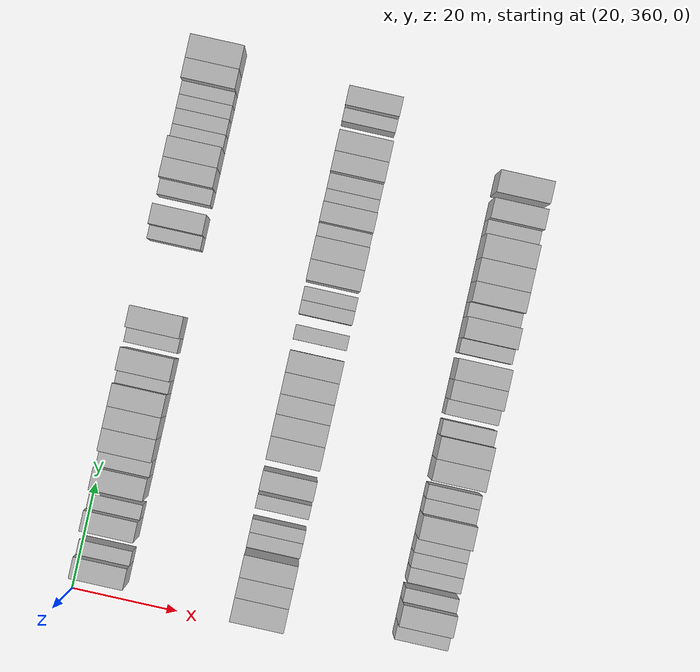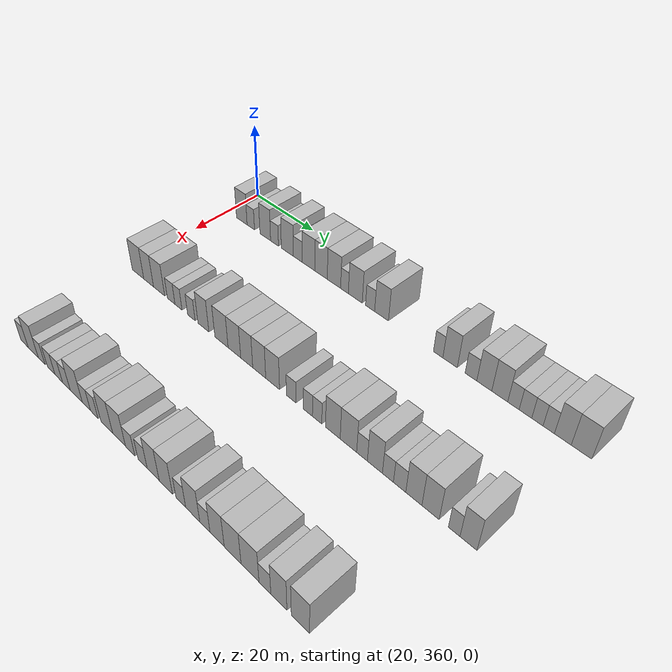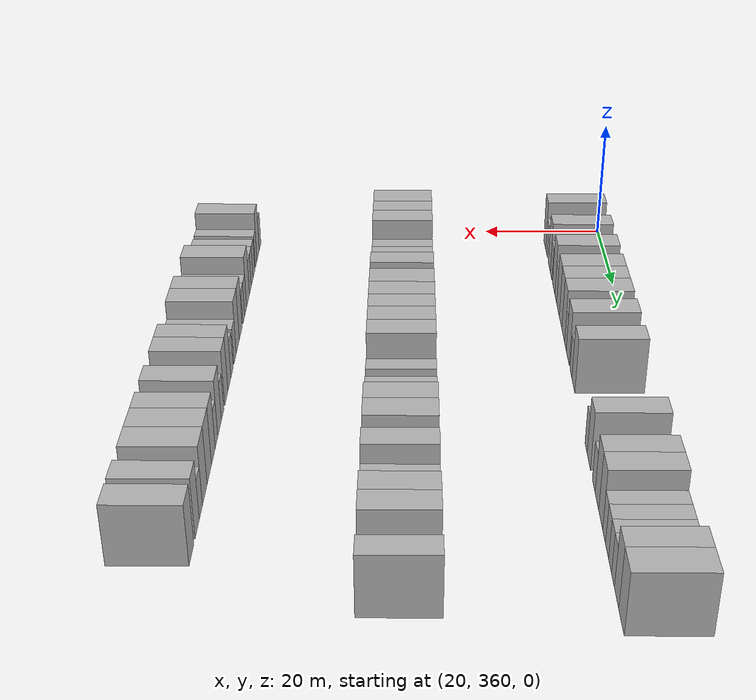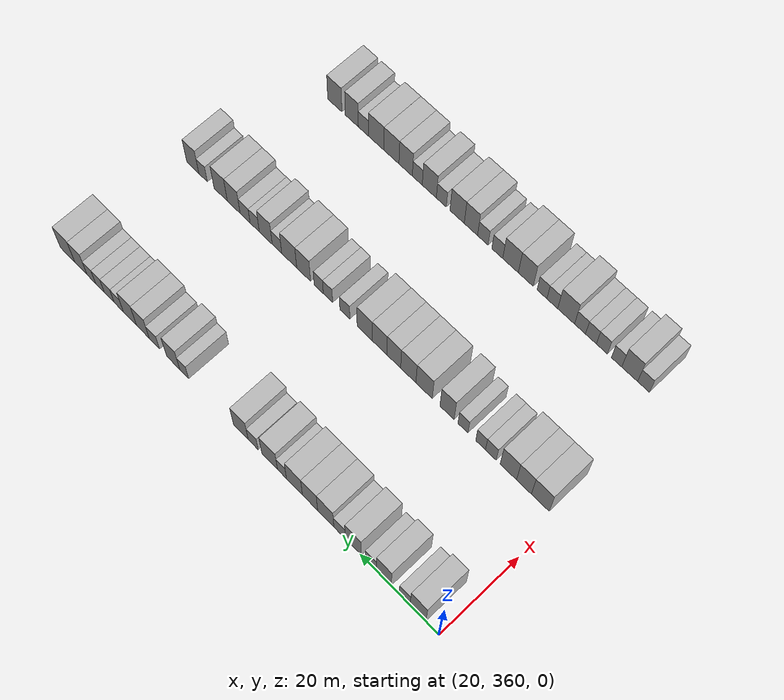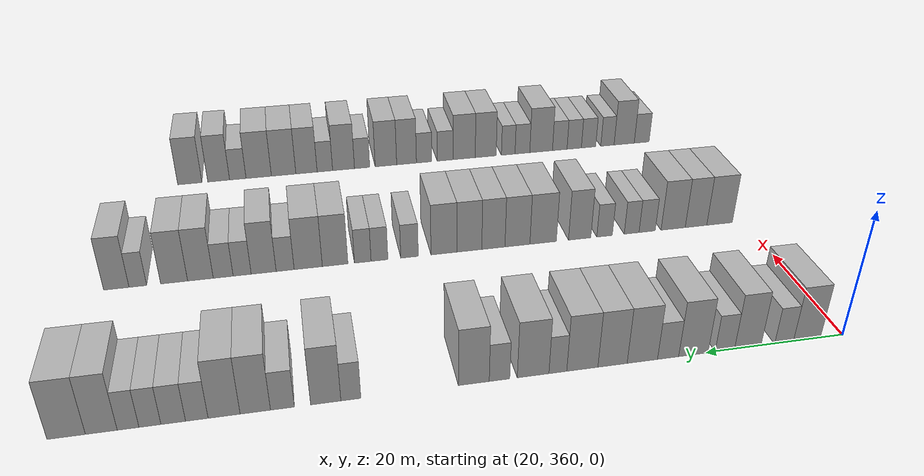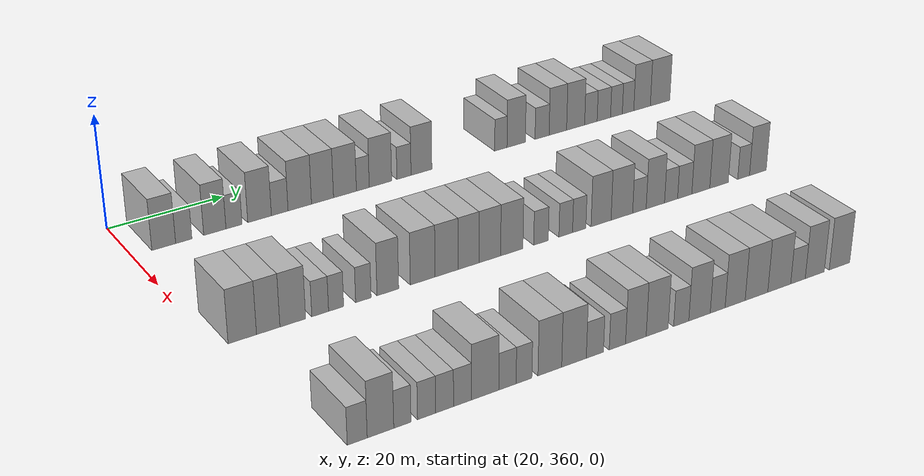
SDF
<sdf version="1.6">
 <world name="default">
  <model name="building_202">
   <static>1</static>
   <pose>25.0000 365.3246 0 0.000000 0.000000 0.000000</pose>
   <link name="link">
    <pose>0 0 4.50 0 0 0</pose>
    <collision name="collision"><geometry><box><size>10.0000 3.9905 9.0000</size></box></geometry></collision>
    <visual name="visual">
     <cast_shadows>0</cast_shadows>
     <geometry><box><size>10.0000 3.9905 9.0000</size></box></geometry>
     <material>
      <script>
       <uri>model://HANNAS_wall/materials/scripts</uri>
       <uri>model://HANNAS_wall/materials/textures</uri>
       <name>vrc/HANNAS_wall</name>
      </script>
     </material>
    </visual>
   </link>
  </model>
  <model name="building_203">
   <static>1</static>
   <pose>25.0000 368.6976 0 0.000000 0.000000 0.000000</pose>
   <link name="link">
    <pose>0 0 3.00 0 0 0</pose>
    <collision name="collision"><geometry><box><size>10.0000 2.7555 6.0000</size></box></geometry></collision>
    <visual name="visual">
     <cast_shadows>0</cast_shadows>
     <geometry><box><size>10.0000 2.7555 6.0000</size></box></geometry>
     <material>
      <script>
       <uri>model://HANNAS_wall/materials/scripts</uri>
       <uri>model://HANNAS_wall/materials/textures</uri>
       <name>vrc/HANNAS_wall</name>
      </script>
     </material>
    </visual>
   </link>
  </model>
  <model name="building_204">
   <static>1</static>
   <pose>25.0000 373.9931 0 0.000000 0.000000 0.000000</pose>
   <link name="link">
    <pose>0 0 4.50 0 0 0</pose>
    <collision name="collision"><geometry><box><size>10.0000 3.8355 9.0000</size></box></geometry></collision>
    <visual name="visual">
     <cast_shadows>0</cast_shadows>
     <geometry><box><size>10.0000 3.8355 9.0000</size></box></geometry>
     <material>
      <script>
       <uri>model://HANNAS_wall/materials/scripts</uri>
       <uri>model://HANNAS_wall/materials/textures</uri>
       <name>vrc/HANNAS_wall</name>
      </script>
     </material>
    </visual>
   </link>
  </model>
  <model name="building_205">
   <static>1</static>
   <pose>25.0000 377.3079 0 0.000000 0.000000 0.000000</pose>
   <link name="link">
    <pose>0 0 3.00 0 0 0</pose>
    <collision name="collision"><geometry><box><size>10.0000 2.7941 6.0000</size></box></geometry></collision>
    <visual name="visual">
     <cast_shadows>0</cast_shadows>
     <geometry><box><size>10.0000 2.7941 6.0000</size></box></geometry>
     <material>
      <script>
       <uri>model://HANNAS_wall/materials/scripts</uri>
       <uri>model://HANNAS_wall/materials/textures</uri>
       <name>vrc/HANNAS_wall</name>
      </script>
     </material>
    </visual>
   </link>
  </model>
  <model name="building_206">
   <static>1</static>
   <pose>25.0000 381.7918 0 0.000000 0.000000 0.000000</pose>
   <link name="link">
    <pose>0 0 4.50 0 0 0</pose>
    <collision name="collision"><geometry><box><size>10.0000 4.1737 9.0000</size></box></geometry></collision>
    <visual name="visual">
     <cast_shadows>0</cast_shadows>
     <geometry><box><size>10.0000 4.1737 9.0000</size></box></geometry>
     <material>
      <script>
       <uri>model://HANNAS_wall/materials/scripts</uri>
       <uri>model://HANNAS_wall/materials/textures</uri>
       <name>vrc/HANNAS_wall</name>
      </script>
     </material>
    </visual>
   </link>
  </model>
  <model name="building_207">
   <static>1</static>
   <pose>25.0000 385.3674 0 0.000000 0.000000 0.000000</pose>
   <link name="link">
    <pose>0 0 3.00 0 0 0</pose>
    <collision name="collision"><geometry><box><size>10.0000 2.9777 6.0000</size></box></geometry></collision>
    <visual name="visual">
     <cast_shadows>0</cast_shadows>
     <geometry><box><size>10.0000 2.9777 6.0000</size></box></geometry>
     <material>
      <script>
       <uri>model://HANNAS_wall/materials/scripts</uri>
       <uri>model://HANNAS_wall/materials/textures</uri>
       <name>vrc/HANNAS_wall</name>
      </script>
     </material>
    </visual>
   </link>
  </model>
  <model name="building_208">
   <static>1</static>
   <pose>25.0000 388.9748 0 0.000000 0.000000 0.000000</pose>
   <link name="link">
    <pose>0 0 4.50 0 0 0</pose>
    <collision name="collision"><geometry><box><size>10.0000 4.2371 9.0000</size></box></geometry></collision>
    <visual name="visual">
     <cast_shadows>0</cast_shadows>
     <geometry><box><size>10.0000 4.2371 9.0000</size></box></geometry>
     <material>
      <script>
       <uri>model://HANNAS_wall/materials/scripts</uri>
       <uri>model://HANNAS_wall/materials/textures</uri>
       <name>vrc/HANNAS_wall</name>
      </script>
     </material>
    </visual>
   </link>
  </model>
  <model name="building_209">
   <static>1</static>
   <pose>25.0000 393.1088 0 0.000000 0.000000 0.000000</pose>
   <link name="link">
    <pose>0 0 4.50 0 0 0</pose>
    <collision name="collision"><geometry><box><size>10.0000 4.0308 9.0000</size></box></geometry></collision>
    <visual name="visual">
     <cast_shadows>0</cast_shadows>
     <geometry><box><size>10.0000 4.0308 9.0000</size></box></geometry>
     <material>
      <script>
       <uri>model://HANNAS_wall/materials/scripts</uri>
       <uri>model://HANNAS_wall/materials/textures</uri>
       <name>vrc/HANNAS_wall</name>
      </script>
     </material>
    </visual>
   </link>
  </model>
  <model name="building_210">
   <static>1</static>
   <pose>25.0000 397.2483 0 0.000000 0.000000 0.000000</pose>
   <link name="link">
    <pose>0 0 4.50 0 0 0</pose>
    <collision name="collision"><geometry><box><size>10.0000 4.2482 9.0000</size></box></geometry></collision>
    <visual name="visual">
     <cast_shadows>0</cast_shadows>
     <geometry><box><size>10.0000 4.2482 9.0000</size></box></geometry>
     <material>
      <script>
       <uri>model://HANNAS_wall/materials/scripts</uri>
       <uri>model://HANNAS_wall/materials/textures</uri>
       <name>vrc/HANNAS_wall</name>
      </script>
     </material>
    </visual>
   </link>
  </model>
  <model name="building_211">
   <static>1</static>
   <pose>25.0000 400.5765 0 0.000000 0.000000 0.000000</pose>
   <link name="link">
    <pose>0 0 3.00 0 0 0</pose>
    <collision name="collision"><geometry><box><size>10.0000 2.4082 6.0000</size></box></geometry></collision>
    <visual name="visual">
     <cast_shadows>0</cast_shadows>
     <geometry><box><size>10.0000 2.4082 6.0000</size></box></geometry>
     <material>
      <script>
       <uri>model://HANNAS_wall/materials/scripts</uri>
       <uri>model://HANNAS_wall/materials/textures</uri>
       <name>vrc/HANNAS_wall</name>
      </script>
     </material>
    </visual>
   </link>
  </model>
  <model name="building_212">
   <static>1</static>
   <pose>25.0000 403.9029 0 0.000000 0.000000 0.000000</pose>
   <link name="link">
    <pose>0 0 4.50 0 0 0</pose>
    <collision name="collision"><geometry><box><size>10.0000 4.2444 9.0000</size></box></geometry></collision>
    <visual name="visual">
     <cast_shadows>0</cast_shadows>
     <geometry><box><size>10.0000 4.2444 9.0000</size></box></geometry>
     <material>
      <script>
       <uri>model://HANNAS_wall/materials/scripts</uri>
       <uri>model://HANNAS_wall/materials/textures</uri>
       <name>vrc/HANNAS_wall</name>
      </script>
     </material>
    </visual>
   </link>
  </model>
  <model name="building_213">
   <static>1</static>
   <pose>25.0000 408.3828 0 0.000000 0.000000 0.000000</pose>
   <link name="link">
    <pose>0 0 3.00 0 0 0</pose>
    <collision name="collision"><geometry><box><size>10.0000 2.7155 6.0000</size></box></geometry></collision>
    <visual name="visual">
     <cast_shadows>0</cast_shadows>
     <geometry><box><size>10.0000 2.7155 6.0000</size></box></geometry>
     <material>
      <script>
       <uri>model://HANNAS_wall/materials/scripts</uri>
       <uri>model://HANNAS_wall/materials/textures</uri>
       <name>vrc/HANNAS_wall</name>
      </script>
     </material>
    </visual>
   </link>
  </model>
  <model name="building_214">
   <static>1</static>
   <pose>25.0000 411.7650 0 0.000000 0.000000 0.000000</pose>
   <link name="link">
    <pose>0 0 4.50 0 0 0</pose>
    <collision name="collision"><geometry><box><size>10.0000 4.0489 9.0000</size></box></geometry></collision>
    <visual name="visual">
     <cast_shadows>0</cast_shadows>
     <geometry><box><size>10.0000 4.0489 9.0000</size></box></geometry>
     <material>
      <script>
       <uri>model://HANNAS_wall/materials/scripts</uri>
       <uri>model://HANNAS_wall/materials/textures</uri>
       <name>vrc/HANNAS_wall</name>
      </script>
     </material>
    </visual>
   </link>
  </model>
  <model name="building_215">
   <static>1</static>
   <pose>25.0000 427.5503 0 0.000000 0.000000 0.000000</pose>
   <link name="link">
    <pose>0 0 3.00 0 0 0</pose>
    <collision name="collision"><geometry><box><size>10.0000 2.5073 6.0000</size></box></geometry></collision>
    <visual name="visual">
     <cast_shadows>0</cast_shadows>
     <geometry><box><size>10.0000 2.5073 6.0000</size></box></geometry>
     <material>
      <script>
       <uri>model://HANNAS_wall/materials/scripts</uri>
       <uri>model://HANNAS_wall/materials/textures</uri>
       <name>vrc/HANNAS_wall</name>
      </script>
     </material>
    </visual>
   </link>
  </model>
  <model name="building_216">
   <static>1</static>
   <pose>25.0000 430.6910 0 0.000000 0.000000 0.000000</pose>
   <link name="link">
    <pose>0 0 4.50 0 0 0</pose>
    <collision name="collision"><geometry><box><size>10.0000 3.7741 9.0000</size></box></geometry></collision>
    <visual name="visual">
     <cast_shadows>0</cast_shadows>
     <geometry><box><size>10.0000 3.7741 9.0000</size></box></geometry>
     <material>
      <script>
       <uri>model://HANNAS_wall/materials/scripts</uri>
       <uri>model://HANNAS_wall/materials/textures</uri>
       <name>vrc/HANNAS_wall</name>
      </script>
     </material>
    </visual>
   </link>
  </model>
  <model name="building_217">
   <static>1</static>
   <pose>25.0000 436.0472 0 0.000000 0.000000 0.000000</pose>
   <link name="link">
    <pose>0 0 3.00 0 0 0</pose>
    <collision name="collision"><geometry><box><size>10.0000 2.9383 6.0000</size></box></geometry></collision>
    <visual name="visual">
     <cast_shadows>0</cast_shadows>
     <geometry><box><size>10.0000 2.9383 6.0000</size></box></geometry>
     <material>
      <script>
       <uri>model://HANNAS_wall/materials/scripts</uri>
       <uri>model://HANNAS_wall/materials/textures</uri>
       <name>vrc/HANNAS_wall</name>
      </script>
     </material>
    </visual>
   </link>
  </model>
  <model name="building_218">
   <static>1</static>
   <pose>25.0000 439.3615 0 0.000000 0.000000 0.000000</pose>
   <link name="link">
    <pose>0 0 4.50 0 0 0</pose>
    <collision name="collision"><geometry><box><size>10.0000 3.6904 9.0000</size></box></geometry></collision>
    <visual name="visual">
     <cast_shadows>0</cast_shadows>
     <geometry><box><size>10.0000 3.6904 9.0000</size></box></geometry>
     <material>
      <script>
       <uri>model://HANNAS_wall/materials/scripts</uri>
       <uri>model://HANNAS_wall/materials/textures</uri>
       <name>vrc/HANNAS_wall</name>
      </script>
     </material>
    </visual>
   </link>
  </model>
  <model name="building_219">
   <static>1</static>
   <pose>25.0000 443.1314 0 0.000000 0.000000 0.000000</pose>
   <link name="link">
    <pose>0 0 4.50 0 0 0</pose>
    <collision name="collision"><geometry><box><size>10.0000 3.8495 9.0000</size></box></geometry></collision>
    <visual name="visual">
     <cast_shadows>0</cast_shadows>
     <geometry><box><size>10.0000 3.8495 9.0000</size></box></geometry>
     <material>
      <script>
       <uri>model://HANNAS_wall/materials/scripts</uri>
       <uri>model://HANNAS_wall/materials/textures</uri>
       <name>vrc/HANNAS_wall</name>
      </script>
     </material>
    </visual>
   </link>
  </model>
  <model name="building_220">
   <static>1</static>
   <pose>25.0000 446.4021 0 0.000000 0.000000 0.000000</pose>
   <link name="link">
    <pose>0 0 3.00 0 0 0</pose>
    <collision name="collision"><geometry><box><size>10.0000 2.6918 6.0000</size></box></geometry></collision>
    <visual name="visual">
     <cast_shadows>0</cast_shadows>
     <geometry><box><size>10.0000 2.6918 6.0000</size></box></geometry>
     <material>
      <script>
       <uri>model://HANNAS_wall/materials/scripts</uri>
       <uri>model://HANNAS_wall/materials/textures</uri>
       <name>vrc/HANNAS_wall</name>
      </script>
     </material>
    </visual>
   </link>
  </model>
  <model name="building_221">
   <static>1</static>
   <pose>25.0000 449.2032 0 0.000000 0.000000 0.000000</pose>
   <link name="link">
    <pose>0 0 3.00 0 0 0</pose>
    <collision name="collision"><geometry><box><size>10.0000 2.9104 6.0000</size></box></geometry></collision>
    <visual name="visual">
     <cast_shadows>0</cast_shadows>
     <geometry><box><size>10.0000 2.9104 6.0000</size></box></geometry>
     <material>
      <script>
       <uri>model://HANNAS_wall/materials/scripts</uri>
       <uri>model://HANNAS_wall/materials/textures</uri>
       <name>vrc/HANNAS_wall</name>
      </script>
     </material>
    </visual>
   </link>
  </model>
  <model name="building_222">
   <static>1</static>
   <pose>25.0000 451.9481 0 0.000000 0.000000 0.000000</pose>
   <link name="link">
    <pose>0 0 3.00 0 0 0</pose>
    <collision name="collision"><geometry><box><size>10.0000 2.5794 6.0000</size></box></geometry></collision>
    <visual name="visual">
     <cast_shadows>0</cast_shadows>
     <geometry><box><size>10.0000 2.5794 6.0000</size></box></geometry>
     <material>
      <script>
       <uri>model://HANNAS_wall/materials/scripts</uri>
       <uri>model://HANNAS_wall/materials/textures</uri>
       <name>vrc/HANNAS_wall</name>
      </script>
     </material>
    </visual>
   </link>
  </model>
  <model name="building_223">
   <static>1</static>
   <pose>25.0000 454.5036 0 0.000000 0.000000 0.000000</pose>
   <link name="link">
    <pose>0 0 3.00 0 0 0</pose>
    <collision name="collision"><geometry><box><size>10.0000 2.5317 6.0000</size></box></geometry></collision>
    <visual name="visual">
     <cast_shadows>0</cast_shadows>
     <geometry><box><size>10.0000 2.5317 6.0000</size></box></geometry>
     <material>
      <script>
       <uri>model://HANNAS_wall/materials/scripts</uri>
       <uri>model://HANNAS_wall/materials/textures</uri>
       <name>vrc/HANNAS_wall</name>
      </script>
     </material>
    </visual>
   </link>
  </model>
  <model name="building_224">
   <static>1</static>
   <pose>25.0000 457.6090 0 0.000000 0.000000 0.000000</pose>
   <link name="link">
    <pose>0 0 4.50 0 0 0</pose>
    <collision name="collision"><geometry><box><size>10.0000 3.6790 9.0000</size></box></geometry></collision>
    <visual name="visual">
     <cast_shadows>0</cast_shadows>
     <geometry><box><size>10.0000 3.6790 9.0000</size></box></geometry>
     <material>
      <script>
       <uri>model://HANNAS_wall/materials/scripts</uri>
       <uri>model://HANNAS_wall/materials/textures</uri>
       <name>vrc/HANNAS_wall</name>
      </script>
     </material>
    </visual>
   </link>
  </model>
  <model name="building_225">
   <static>1</static>
   <pose>25.0000 461.6399 0 0.000000 0.000000 0.000000</pose>
   <link name="link">
    <pose>0 0 4.50 0 0 0</pose>
    <collision name="collision"><geometry><box><size>10.0000 4.3828 9.0000</size></box></geometry></collision>
    <visual name="visual">
     <cast_shadows>0</cast_shadows>
     <geometry><box><size>10.0000 4.3828 9.0000</size></box></geometry>
     <material>
      <script>
       <uri>model://HANNAS_wall/materials/scripts</uri>
       <uri>model://HANNAS_wall/materials/textures</uri>
       <name>vrc/HANNAS_wall</name>
      </script>
     </material>
    </visual>
   </link>
  </model>
  <model name="building_429">
   <static>1</static>
   <pose>55.0000 364.3243 0 0.000000 0.000000 0.000000</pose>
   <link name="link">
    <pose>0 0 4.50 0 0 0</pose>
    <collision name="collision"><geometry><box><size>10.0000 4.4689 9.0000</size></box></geometry></collision>
    <visual name="visual">
     <cast_shadows>0</cast_shadows>
     <geometry><box><size>10.0000 4.4689 9.0000</size></box></geometry>
     <material>
      <script>
       <uri>model://HANNAS_wall/materials/scripts</uri>
       <uri>model://HANNAS_wall/materials/textures</uri>
       <name>vrc/HANNAS_wall</name>
      </script>
     </material>
    </visual>
   </link>
  </model>
  <model name="building_430">
   <static>1</static>
   <pose>55.0000 368.4255 0 0.000000 0.000000 0.000000</pose>
   <link name="link">
    <pose>0 0 4.50 0 0 0</pose>
    <collision name="collision"><geometry><box><size>10.0000 3.7334 9.0000</size></box></geometry></collision>
    <visual name="visual">
     <cast_shadows>0</cast_shadows>
     <geometry><box><size>10.0000 3.7334 9.0000</size></box></geometry>
     <material>
      <script>
       <uri>model://HANNAS_wall/materials/scripts</uri>
       <uri>model://HANNAS_wall/materials/textures</uri>
       <name>vrc/HANNAS_wall</name>
      </script>
     </material>
    </visual>
   </link>
  </model>
  <model name="building_431">
   <static>1</static>
   <pose>55.0000 372.3713 0 0.000000 0.000000 0.000000</pose>
   <link name="link">
    <pose>0 0 4.50 0 0 0</pose>
    <collision name="collision"><geometry><box><size>10.0000 4.1582 9.0000</size></box></geometry></collision>
    <visual name="visual">
     <cast_shadows>0</cast_shadows>
     <geometry><box><size>10.0000 4.1582 9.0000</size></box></geometry>
     <material>
      <script>
       <uri>model://HANNAS_wall/materials/scripts</uri>
       <uri>model://HANNAS_wall/materials/textures</uri>
       <name>vrc/HANNAS_wall</name>
      </script>
     </material>
    </visual>
   </link>
  </model>
  <model name="building_432">
   <static>1</static>
   <pose>55.0000 376.8307 0 0.000000 0.000000 0.000000</pose>
   <link name="link">
    <pose>0 0 3.00 0 0 0</pose>
    <collision name="collision"><geometry><box><size>10.0000 2.7608 6.0000</size></box></geometry></collision>
    <visual name="visual">
     <cast_shadows>0</cast_shadows>
     <geometry><box><size>10.0000 2.7608 6.0000</size></box></geometry>
     <material>
      <script>
       <uri>model://HANNAS_wall/materials/scripts</uri>
       <uri>model://HANNAS_wall/materials/textures</uri>
       <name>vrc/HANNAS_wall</name>
      </script>
     </material>
    </visual>
   </link>
  </model>
  <model name="building_433">
   <static>1</static>
   <pose>55.0000 379.4644 0 0.000000 0.000000 0.000000</pose>
   <link name="link">
    <pose>0 0 3.00 0 0 0</pose>
    <collision name="collision"><geometry><box><size>10.0000 2.5065 6.0000</size></box></geometry></collision>
    <visual name="visual">
     <cast_shadows>0</cast_shadows>
     <geometry><box><size>10.0000 2.5065 6.0000</size></box></geometry>
     <material>
      <script>
       <uri>model://HANNAS_wall/materials/scripts</uri>
       <uri>model://HANNAS_wall/materials/textures</uri>
       <name>vrc/HANNAS_wall</name>
      </script>
     </material>
    </visual>
   </link>
  </model>
  <model name="building_434">
   <static>1</static>
   <pose>55.0000 384.0195 0 0.000000 0.000000 0.000000</pose>
   <link name="link">
    <pose>0 0 3.00 0 0 0</pose>
    <collision name="collision"><geometry><box><size>10.0000 2.6039 6.0000</size></box></geometry></collision>
    <visual name="visual">
     <cast_shadows>0</cast_shadows>
     <geometry><box><size>10.0000 2.6039 6.0000</size></box></geometry>
     <material>
      <script>
       <uri>model://HANNAS_wall/materials/scripts</uri>
       <uri>model://HANNAS_wall/materials/textures</uri>
       <name>vrc/HANNAS_wall</name>
      </script>
     </material>
    </visual>
   </link>
  </model>
  <model name="building_435">
   <static>1</static>
   <pose>55.0000 388.1783 0 0.000000 0.000000 0.000000</pose>
   <link name="link">
    <pose>0 0 4.50 0 0 0</pose>
    <collision name="collision"><geometry><box><size>10.0000 3.7136 9.0000</size></box></geometry></collision>
    <visual name="visual">
     <cast_shadows>0</cast_shadows>
     <geometry><box><size>10.0000 3.7136 9.0000</size></box></geometry>
     <material>
      <script>
       <uri>model://HANNAS_wall/materials/scripts</uri>
       <uri>model://HANNAS_wall/materials/textures</uri>
       <name>vrc/HANNAS_wall</name>
      </script>
     </material>
    </visual>
   </link>
  </model>
  <model name="building_436">
   <static>1</static>
   <pose>55.0000 394.2040 0 0.000000 0.000000 0.000000</pose>
   <link name="link">
    <pose>0 0 4.50 0 0 0</pose>
    <collision name="collision"><geometry><box><size>10.0000 4.3378 9.0000</size></box></geometry></collision>
    <visual name="visual">
     <cast_shadows>0</cast_shadows>
     <geometry><box><size>10.0000 4.3378 9.0000</size></box></geometry>
     <material>
      <script>
       <uri>model://HANNAS_wall/materials/scripts</uri>
       <uri>model://HANNAS_wall/materials/textures</uri>
       <name>vrc/HANNAS_wall</name>
      </script>
     </material>
    </visual>
   </link>
  </model>
  <model name="building_437">
   <static>1</static>
   <pose>55.0000 398.4014 0 0.000000 0.000000 0.000000</pose>
   <link name="link">
    <pose>0 0 4.50 0 0 0</pose>
    <collision name="collision"><geometry><box><size>10.0000 4.0569 9.0000</size></box></geometry></collision>
    <visual name="visual">
     <cast_shadows>0</cast_shadows>
     <geometry><box><size>10.0000 4.0569 9.0000</size></box></geometry>
     <material>
      <script>
       <uri>model://HANNAS_wall/materials/scripts</uri>
       <uri>model://HANNAS_wall/materials/textures</uri>
       <name>vrc/HANNAS_wall</name>
      </script>
     </material>
    </visual>
   </link>
  </model>
  <model name="building_438">
   <static>1</static>
   <pose>55.0000 402.2975 0 0.000000 0.000000 0.000000</pose>
   <link name="link">
    <pose>0 0 4.50 0 0 0</pose>
    <collision name="collision"><geometry><box><size>10.0000 3.7353 9.0000</size></box></geometry></collision>
    <visual name="visual">
     <cast_shadows>0</cast_shadows>
     <geometry><box><size>10.0000 3.7353 9.0000</size></box></geometry>
     <material>
      <script>
       <uri>model://HANNAS_wall/materials/scripts</uri>
       <uri>model://HANNAS_wall/materials/textures</uri>
       <name>vrc/HANNAS_wall</name>
      </script>
     </material>
    </visual>
   </link>
  </model>
  <model name="building_439">
   <static>1</static>
   <pose>55.0000 406.1472 0 0.000000 0.000000 0.000000</pose>
   <link name="link">
    <pose>0 0 4.50 0 0 0</pose>
    <collision name="collision"><geometry><box><size>10.0000 3.9641 9.0000</size></box></geometry></collision>
    <visual name="visual">
     <cast_shadows>0</cast_shadows>
     <geometry><box><size>10.0000 3.9641 9.0000</size></box></geometry>
     <material>
      <script>
       <uri>model://HANNAS_wall/materials/scripts</uri>
       <uri>model://HANNAS_wall/materials/textures</uri>
       <name>vrc/HANNAS_wall</name>
      </script>
     </material>
    </visual>
   </link>
  </model>
  <model name="building_440">
   <static>1</static>
   <pose>55.0000 410.1823 0 0.000000 0.000000 0.000000</pose>
   <link name="link">
    <pose>0 0 4.50 0 0 0</pose>
    <collision name="collision"><geometry><box><size>10.0000 4.1060 9.0000</size></box></geometry></collision>
    <visual name="visual">
     <cast_shadows>0</cast_shadows>
     <geometry><box><size>10.0000 4.1060 9.0000</size></box></geometry>
     <material>
      <script>
       <uri>model://HANNAS_wall/materials/scripts</uri>
       <uri>model://HANNAS_wall/materials/textures</uri>
       <name>vrc/HANNAS_wall</name>
      </script>
     </material>
    </visual>
   </link>
  </model>
  <model name="building_441">
   <static>1</static>
   <pose>55.0000 415.6084 0 0.000000 0.000000 0.000000</pose>
   <link name="link">
    <pose>0 0 3.00 0 0 0</pose>
    <collision name="collision"><geometry><box><size>10.0000 2.7462 6.0000</size></box></geometry></collision>
    <visual name="visual">
     <cast_shadows>0</cast_shadows>
     <geometry><box><size>10.0000 2.7462 6.0000</size></box></geometry>
     <material>
      <script>
       <uri>model://HANNAS_wall/materials/scripts</uri>
       <uri>model://HANNAS_wall/materials/textures</uri>
       <name>vrc/HANNAS_wall</name>
      </script>
     </material>
    </visual>
   </link>
  </model>
  <model name="building_442">
   <static>1</static>
   <pose>55.0000 420.2817 0 0.000000 0.000000 0.000000</pose>
   <link name="link">
    <pose>0 0 3.00 0 0 0</pose>
    <collision name="collision"><geometry><box><size>10.0000 2.6005 6.0000</size></box></geometry></collision>
    <visual name="visual">
     <cast_shadows>0</cast_shadows>
     <geometry><box><size>10.0000 2.6005 6.0000</size></box></geometry>
     <material>
      <script>
       <uri>model://HANNAS_wall/materials/scripts</uri>
       <uri>model://HANNAS_wall/materials/textures</uri>
       <name>vrc/HANNAS_wall</name>
      </script>
     </material>
    </visual>
   </link>
  </model>
  <model name="building_443">
   <static>1</static>
   <pose>55.0000 422.8611 0 0.000000 0.000000 0.000000</pose>
   <link name="link">
    <pose>0 0 3.00 0 0 0</pose>
    <collision name="collision"><geometry><box><size>10.0000 2.5583 6.0000</size></box></geometry></collision>
    <visual name="visual">
     <cast_shadows>0</cast_shadows>
     <geometry><box><size>10.0000 2.5583 6.0000</size></box></geometry>
     <material>
      <script>
       <uri>model://HANNAS_wall/materials/scripts</uri>
       <uri>model://HANNAS_wall/materials/textures</uri>
       <name>vrc/HANNAS_wall</name>
      </script>
     </material>
    </visual>
   </link>
  </model>
  <model name="building_444">
   <static>1</static>
   <pose>55.0000 427.0908 0 0.000000 0.000000 0.000000</pose>
   <link name="link">
    <pose>0 0 4.50 0 0 0</pose>
    <collision name="collision"><geometry><box><size>10.0000 3.9010 9.0000</size></box></geometry></collision>
    <visual name="visual">
     <cast_shadows>0</cast_shadows>
     <geometry><box><size>10.0000 3.9010 9.0000</size></box></geometry>
     <material>
      <script>
       <uri>model://HANNAS_wall/materials/scripts</uri>
       <uri>model://HANNAS_wall/materials/textures</uri>
       <name>vrc/HANNAS_wall</name>
      </script>
     </material>
    </visual>
   </link>
  </model>
  <model name="building_445">
   <static>1</static>
   <pose>55.0000 431.1688 0 0.000000 0.000000 0.000000</pose>
   <link name="link">
    <pose>0 0 4.50 0 0 0</pose>
    <collision name="collision"><geometry><box><size>10.0000 4.2551 9.0000</size></box></geometry></collision>
    <visual name="visual">
     <cast_shadows>0</cast_shadows>
     <geometry><box><size>10.0000 4.2551 9.0000</size></box></geometry>
     <material>
      <script>
       <uri>model://HANNAS_wall/materials/scripts</uri>
       <uri>model://HANNAS_wall/materials/textures</uri>
       <name>vrc/HANNAS_wall</name>
      </script>
     </material>
    </visual>
   </link>
  </model>
  <model name="building_446">
   <static>1</static>
   <pose>55.0000 434.6471 0 0.000000 0.000000 0.000000</pose>
   <link name="link">
    <pose>0 0 3.00 0 0 0</pose>
    <collision name="collision"><geometry><box><size>10.0000 2.7016 6.0000</size></box></geometry></collision>
    <visual name="visual">
     <cast_shadows>0</cast_shadows>
     <geometry><box><size>10.0000 2.7016 6.0000</size></box></geometry>
     <material>
      <script>
       <uri>model://HANNAS_wall/materials/scripts</uri>
       <uri>model://HANNAS_wall/materials/textures</uri>
       <name>vrc/HANNAS_wall</name>
      </script>
     </material>
    </visual>
   </link>
  </model>
  <model name="building_447">
   <static>1</static>
   <pose>55.0000 437.8534 0 0.000000 0.000000 0.000000</pose>
   <link name="link">
    <pose>0 0 4.50 0 0 0</pose>
    <collision name="collision"><geometry><box><size>10.0000 3.7110 9.0000</size></box></geometry></collision>
    <visual name="visual">
     <cast_shadows>0</cast_shadows>
     <geometry><box><size>10.0000 3.7110 9.0000</size></box></geometry>
     <material>
      <script>
       <uri>model://HANNAS_wall/materials/scripts</uri>
       <uri>model://HANNAS_wall/materials/textures</uri>
       <name>vrc/HANNAS_wall</name>
      </script>
     </material>
    </visual>
   </link>
  </model>
  <model name="building_448">
   <static>1</static>
   <pose>55.0000 441.0413 0 0.000000 0.000000 0.000000</pose>
   <link name="link">
    <pose>0 0 3.00 0 0 0</pose>
    <collision name="collision"><geometry><box><size>10.0000 2.6648 6.0000</size></box></geometry></collision>
    <visual name="visual">
     <cast_shadows>0</cast_shadows>
     <geometry><box><size>10.0000 2.6648 6.0000</size></box></geometry>
     <material>
      <script>
       <uri>model://HANNAS_wall/materials/scripts</uri>
       <uri>model://HANNAS_wall/materials/textures</uri>
       <name>vrc/HANNAS_wall</name>
      </script>
     </material>
    </visual>
   </link>
  </model>
  <model name="building_449">
   <static>1</static>
   <pose>55.0000 443.8328 0 0.000000 0.000000 0.000000</pose>
   <link name="link">
    <pose>0 0 3.00 0 0 0</pose>
    <collision name="collision"><geometry><box><size>10.0000 2.9182 6.0000</size></box></geometry></collision>
    <visual name="visual">
     <cast_shadows>0</cast_shadows>
     <geometry><box><size>10.0000 2.9182 6.0000</size></box></geometry>
     <material>
      <script>
       <uri>model://HANNAS_wall/materials/scripts</uri>
       <uri>model://HANNAS_wall/materials/textures</uri>
       <name>vrc/HANNAS_wall</name>
      </script>
     </material>
    </visual>
   </link>
  </model>
  <model name="building_450">
   <static>1</static>
   <pose>55.0000 447.1568 0 0.000000 0.000000 0.000000</pose>
   <link name="link">
    <pose>0 0 4.50 0 0 0</pose>
    <collision name="collision"><geometry><box><size>10.0000 3.7299 9.0000</size></box></geometry></collision>
    <visual name="visual">
     <cast_shadows>0</cast_shadows>
     <geometry><box><size>10.0000 3.7299 9.0000</size></box></geometry>
     <material>
      <script>
       <uri>model://HANNAS_wall/materials/scripts</uri>
       <uri>model://HANNAS_wall/materials/textures</uri>
       <name>vrc/HANNAS_wall</name>
      </script>
     </material>
    </visual>
   </link>
  </model>
  <model name="building_451">
   <static>1</static>
   <pose>55.0000 450.9696 0 0.000000 0.000000 0.000000</pose>
   <link name="link">
    <pose>0 0 4.50 0 0 0</pose>
    <collision name="collision"><geometry><box><size>10.0000 3.8956 9.0000</size></box></geometry></collision>
    <visual name="visual">
     <cast_shadows>0</cast_shadows>
     <geometry><box><size>10.0000 3.8956 9.0000</size></box></geometry>
     <material>
      <script>
       <uri>model://HANNAS_wall/materials/scripts</uri>
       <uri>model://HANNAS_wall/materials/textures</uri>
       <name>vrc/HANNAS_wall</name>
      </script>
     </material>
    </visual>
   </link>
  </model>
  <model name="building_452">
   <static>1</static>
   <pose>55.0000 456.1774 0 0.000000 0.000000 0.000000</pose>
   <link name="link">
    <pose>0 0 3.00 0 0 0</pose>
    <collision name="collision"><geometry><box><size>10.0000 2.5201 6.0000</size></box></geometry></collision>
    <visual name="visual">
     <cast_shadows>0</cast_shadows>
     <geometry><box><size>10.0000 2.5201 6.0000</size></box></geometry>
     <material>
      <script>
       <uri>model://HANNAS_wall/materials/scripts</uri>
       <uri>model://HANNAS_wall/materials/textures</uri>
       <name>vrc/HANNAS_wall</name>
      </script>
     </material>
    </visual>
   </link>
  </model>
  <model name="building_453">
   <static>1</static>
   <pose>55.0000 459.2395 0 0.000000 0.000000 0.000000</pose>
   <link name="link">
    <pose>0 0 4.50 0 0 0</pose>
    <collision name="collision"><geometry><box><size>10.0000 3.6041 9.0000</size></box></geometry></collision>
    <visual name="visual">
     <cast_shadows>0</cast_shadows>
     <geometry><box><size>10.0000 3.6041 9.0000</size></box></geometry>
     <material>
      <script>
       <uri>model://HANNAS_wall/materials/scripts</uri>
       <uri>model://HANNAS_wall/materials/textures</uri>
       <name>vrc/HANNAS_wall</name>
      </script>
     </material>
    </visual>
   </link>
  </model>
  <model name="building_655">
   <static>1</static>
   <pose>85.0000 366.4461 0 0.000000 0.000000 0.000000</pose>
   <link name="link">
    <pose>0 0 3.00 0 0 0</pose>
    <collision name="collision"><geometry><box><size>10.0000 2.9735 6.0000</size></box></geometry></collision>
    <visual name="visual">
     <cast_shadows>0</cast_shadows>
     <geometry><box><size>10.0000 2.9735 6.0000</size></box></geometry>
     <material>
      <script>
       <uri>model://HANNAS_wall/materials/scripts</uri>
       <uri>model://HANNAS_wall/materials/textures</uri>
       <name>vrc/HANNAS_wall</name>
      </script>
     </material>
    </visual>
   </link>
  </model>
  <model name="building_656">
   <static>1</static>
   <pose>85.0000 369.9399 0 0.000000 0.000000 0.000000</pose>
   <link name="link">
    <pose>0 0 4.50 0 0 0</pose>
    <collision name="collision"><geometry><box><size>10.0000 4.0142 9.0000</size></box></geometry></collision>
    <visual name="visual">
     <cast_shadows>0</cast_shadows>
     <geometry><box><size>10.0000 4.0142 9.0000</size></box></geometry>
     <material>
      <script>
       <uri>model://HANNAS_wall/materials/scripts</uri>
       <uri>model://HANNAS_wall/materials/textures</uri>
       <name>vrc/HANNAS_wall</name>
      </script>
     </material>
    </visual>
   </link>
  </model>
  <model name="building_657">
   <static>1</static>
   <pose>85.0000 373.2649 0 0.000000 0.000000 0.000000</pose>
   <link name="link">
    <pose>0 0 3.00 0 0 0</pose>
    <collision name="collision"><geometry><box><size>10.0000 2.6357 6.0000</size></box></geometry></collision>
    <visual name="visual">
     <cast_shadows>0</cast_shadows>
     <geometry><box><size>10.0000 2.6357 6.0000</size></box></geometry>
     <material>
      <script>
       <uri>model://HANNAS_wall/materials/scripts</uri>
       <uri>model://HANNAS_wall/materials/textures</uri>
       <name>vrc/HANNAS_wall</name>
      </script>
     </material>
    </visual>
   </link>
  </model>
  <model name="building_658">
   <static>1</static>
   <pose>85.0000 376.9951 0 0.000000 0.000000 0.000000</pose>
   <link name="link">
    <pose>0 0 3.00 0 0 0</pose>
    <collision name="collision"><geometry><box><size>10.0000 2.8247 6.0000</size></box></geometry></collision>
    <visual name="visual">
     <cast_shadows>0</cast_shadows>
     <geometry><box><size>10.0000 2.8247 6.0000</size></box></geometry>
     <material>
      <script>
       <uri>model://HANNAS_wall/materials/scripts</uri>
       <uri>model://HANNAS_wall/materials/textures</uri>
       <name>vrc/HANNAS_wall</name>
      </script>
     </material>
    </visual>
   </link>
  </model>
  <model name="building_659">
   <static>1</static>
   <pose>85.0000 379.8097 0 0.000000 0.000000 0.000000</pose>
   <link name="link">
    <pose>0 0 3.00 0 0 0</pose>
    <collision name="collision"><geometry><box><size>10.0000 2.8046 6.0000</size></box></geometry></collision>
    <visual name="visual">
     <cast_shadows>0</cast_shadows>
     <geometry><box><size>10.0000 2.8046 6.0000</size></box></geometry>
     <material>
      <script>
       <uri>model://HANNAS_wall/materials/scripts</uri>
       <uri>model://HANNAS_wall/materials/textures</uri>
       <name>vrc/HANNAS_wall</name>
      </script>
     </material>
    </visual>
   </link>
  </model>
  <model name="building_660">
   <static>1</static>
   <pose>85.0000 382.6295 0 0.000000 0.000000 0.000000</pose>
   <link name="link">
    <pose>0 0 3.00 0 0 0</pose>
    <collision name="collision"><geometry><box><size>10.0000 2.8349 6.0000</size></box></geometry></collision>
    <visual name="visual">
     <cast_shadows>0</cast_shadows>
     <geometry><box><size>10.0000 2.8349 6.0000</size></box></geometry>
     <material>
      <script>
       <uri>model://HANNAS_wall/materials/scripts</uri>
       <uri>model://HANNAS_wall/materials/textures</uri>
       <name>vrc/HANNAS_wall</name>
      </script>
     </material>
    </visual>
   </link>
  </model>
  <model name="building_661">
   <static>1</static>
   <pose>85.0000 386.2443 0 0.000000 0.000000 0.000000</pose>
   <link name="link">
    <pose>0 0 4.50 0 0 0</pose>
    <collision name="collision"><geometry><box><size>10.0000 4.3948 9.0000</size></box></geometry></collision>
    <visual name="visual">
     <cast_shadows>0</cast_shadows>
     <geometry><box><size>10.0000 4.3948 9.0000</size></box></geometry>
     <material>
      <script>
       <uri>model://HANNAS_wall/materials/scripts</uri>
       <uri>model://HANNAS_wall/materials/textures</uri>
       <name>vrc/HANNAS_wall</name>
      </script>
     </material>
    </visual>
   </link>
  </model>
  <model name="building_662">
   <static>1</static>
   <pose>85.0000 389.8570 0 0.000000 0.000000 0.000000</pose>
   <link name="link">
    <pose>0 0 3.00 0 0 0</pose>
    <collision name="collision"><geometry><box><size>10.0000 2.8306 6.0000</size></box></geometry></collision>
    <visual name="visual">
     <cast_shadows>0</cast_shadows>
     <geometry><box><size>10.0000 2.8306 6.0000</size></box></geometry>
     <material>
      <script>
       <uri>model://HANNAS_wall/materials/scripts</uri>
       <uri>model://HANNAS_wall/materials/textures</uri>
       <name>vrc/HANNAS_wall</name>
      </script>
     </material>
    </visual>
   </link>
  </model>
  <model name="building_663">
   <static>1</static>
   <pose>85.0000 392.5738 0 0.000000 0.000000 0.000000</pose>
   <link name="link">
    <pose>0 0 3.00 0 0 0</pose>
    <collision name="collision"><geometry><box><size>10.0000 2.6029 6.0000</size></box></geometry></collision>
    <visual name="visual">
     <cast_shadows>0</cast_shadows>
     <geometry><box><size>10.0000 2.6029 6.0000</size></box></geometry>
     <material>
      <script>
       <uri>model://HANNAS_wall/materials/scripts</uri>
       <uri>model://HANNAS_wall/materials/textures</uri>
       <name>vrc/HANNAS_wall</name>
      </script>
     </material>
    </visual>
   </link>
  </model>
  <model name="building_664">
   <static>1</static>
   <pose>85.0000 396.8592 0 0.000000 0.000000 0.000000</pose>
   <link name="link">
    <pose>0 0 4.50 0 0 0</pose>
    <collision name="collision"><geometry><box><size>10.0000 3.9679 9.0000</size></box></geometry></collision>
    <visual name="visual">
     <cast_shadows>0</cast_shadows>
     <geometry><box><size>10.0000 3.9679 9.0000</size></box></geometry>
     <material>
      <script>
       <uri>model://HANNAS_wall/materials/scripts</uri>
       <uri>model://HANNAS_wall/materials/textures</uri>
       <name>vrc/HANNAS_wall</name>
      </script>
     </material>
    </visual>
   </link>
  </model>
  <model name="building_665">
   <static>1</static>
   <pose>85.0000 400.9382 0 0.000000 0.000000 0.000000</pose>
   <link name="link">
    <pose>0 0 4.50 0 0 0</pose>
    <collision name="collision"><geometry><box><size>10.0000 4.1903 9.0000</size></box></geometry></collision>
    <visual name="visual">
     <cast_shadows>0</cast_shadows>
     <geometry><box><size>10.0000 4.1903 9.0000</size></box></geometry>
     <material>
      <script>
       <uri>model://HANNAS_wall/materials/scripts</uri>
       <uri>model://HANNAS_wall/materials/textures</uri>
       <name>vrc/HANNAS_wall</name>
      </script>
     </material>
    </visual>
   </link>
  </model>
  <model name="building_666">
   <static>1</static>
   <pose>85.0000 404.5081 0 0.000000 0.000000 0.000000</pose>
   <link name="link">
    <pose>0 0 3.00 0 0 0</pose>
    <collision name="collision"><geometry><box><size>10.0000 2.9495 6.0000</size></box></geometry></collision>
    <visual name="visual">
     <cast_shadows>0</cast_shadows>
     <geometry><box><size>10.0000 2.9495 6.0000</size></box></geometry>
     <material>
      <script>
       <uri>model://HANNAS_wall/materials/scripts</uri>
       <uri>model://HANNAS_wall/materials/textures</uri>
       <name>vrc/HANNAS_wall</name>
      </script>
     </material>
    </visual>
   </link>
  </model>
  <model name="building_667">
   <static>1</static>
   <pose>85.0000 408.4091 0 0.000000 0.000000 0.000000</pose>
   <link name="link">
    <pose>0 0 3.00 0 0 0</pose>
    <collision name="collision"><geometry><box><size>10.0000 2.8525 6.0000</size></box></geometry></collision>
    <visual name="visual">
     <cast_shadows>0</cast_shadows>
     <geometry><box><size>10.0000 2.8525 6.0000</size></box></geometry>
     <material>
      <script>
       <uri>model://HANNAS_wall/materials/scripts</uri>
       <uri>model://HANNAS_wall/materials/textures</uri>
       <name>vrc/HANNAS_wall</name>
      </script>
     </material>
    </visual>
   </link>
  </model>
  <model name="building_668">
   <static>1</static>
   <pose>85.0000 411.6585 0 0.000000 0.000000 0.000000</pose>
   <link name="link">
    <pose>0 0 4.50 0 0 0</pose>
    <collision name="collision"><geometry><box><size>10.0000 3.6463 9.0000</size></box></geometry></collision>
    <visual name="visual">
     <cast_shadows>0</cast_shadows>
     <geometry><box><size>10.0000 3.6463 9.0000</size></box></geometry>
     <material>
      <script>
       <uri>model://HANNAS_wall/materials/scripts</uri>
       <uri>model://HANNAS_wall/materials/textures</uri>
       <name>vrc/HANNAS_wall</name>
      </script>
     </material>
    </visual>
   </link>
  </model>
  <model name="building_669">
   <static>1</static>
   <pose>85.0000 415.4486 0 0.000000 0.000000 0.000000</pose>
   <link name="link">
    <pose>0 0 4.50 0 0 0</pose>
    <collision name="collision"><geometry><box><size>10.0000 3.9338 9.0000</size></box></geometry></collision>
    <visual name="visual">
     <cast_shadows>0</cast_shadows>
     <geometry><box><size>10.0000 3.9338 9.0000</size></box></geometry>
     <material>
      <script>
       <uri>model://HANNAS_wall/materials/scripts</uri>
       <uri>model://HANNAS_wall/materials/textures</uri>
       <name>vrc/HANNAS_wall</name>
      </script>
     </material>
    </visual>
   </link>
  </model>
  <model name="building_670">
   <static>1</static>
   <pose>85.0000 419.7953 0 0.000000 0.000000 0.000000</pose>
   <link name="link">
    <pose>0 0 3.00 0 0 0</pose>
    <collision name="collision"><geometry><box><size>10.0000 2.7598 6.0000</size></box></geometry></collision>
    <visual name="visual">
     <cast_shadows>0</cast_shadows>
     <geometry><box><size>10.0000 2.7598 6.0000</size></box></geometry>
     <material>
      <script>
       <uri>model://HANNAS_wall/materials/scripts</uri>
       <uri>model://HANNAS_wall/materials/textures</uri>
       <name>vrc/HANNAS_wall</name>
      </script>
     </material>
    </visual>
   </link>
  </model>
  <model name="building_671">
   <static>1</static>
   <pose>85.0000 423.1478 0 0.000000 0.000000 0.000000</pose>
   <link name="link">
    <pose>0 0 4.50 0 0 0</pose>
    <collision name="collision"><geometry><box><size>10.0000 3.9452 9.0000</size></box></geometry></collision>
    <visual name="visual">
     <cast_shadows>0</cast_shadows>
     <geometry><box><size>10.0000 3.9452 9.0000</size></box></geometry>
     <material>
      <script>
       <uri>model://HANNAS_wall/materials/scripts</uri>
       <uri>model://HANNAS_wall/materials/textures</uri>
       <name>vrc/HANNAS_wall</name>
      </script>
     </material>
    </visual>
   </link>
  </model>
  <model name="building_672">
   <static>1</static>
   <pose>85.0000 426.5081 0 0.000000 0.000000 0.000000</pose>
   <link name="link">
    <pose>0 0 3.00 0 0 0</pose>
    <collision name="collision"><geometry><box><size>10.0000 2.7752 6.0000</size></box></geometry></collision>
    <visual name="visual">
     <cast_shadows>0</cast_shadows>
     <geometry><box><size>10.0000 2.7752 6.0000</size></box></geometry>
     <material>
      <script>
       <uri>model://HANNAS_wall/materials/scripts</uri>
       <uri>model://HANNAS_wall/materials/textures</uri>
       <name>vrc/HANNAS_wall</name>
      </script>
     </material>
    </visual>
   </link>
  </model>
  <model name="building_673">
   <static>1</static>
   <pose>85.0000 429.7873 0 0.000000 0.000000 0.000000</pose>
   <link name="link">
    <pose>0 0 4.50 0 0 0</pose>
    <collision name="collision"><geometry><box><size>10.0000 3.7831 9.0000</size></box></geometry></collision>
    <visual name="visual">
     <cast_shadows>0</cast_shadows>
     <geometry><box><size>10.0000 3.7831 9.0000</size></box></geometry>
     <material>
      <script>
       <uri>model://HANNAS_wall/materials/scripts</uri>
       <uri>model://HANNAS_wall/materials/textures</uri>
       <name>vrc/HANNAS_wall</name>
      </script>
     </material>
    </visual>
   </link>
  </model>
  <model name="building_674">
   <static>1</static>
   <pose>85.0000 433.8417 0 0.000000 0.000000 0.000000</pose>
   <link name="link">
    <pose>0 0 4.50 0 0 0</pose>
    <collision name="collision"><geometry><box><size>10.0000 4.3257 9.0000</size></box></geometry></collision>
    <visual name="visual">
     <cast_shadows>0</cast_shadows>
     <geometry><box><size>10.0000 4.3257 9.0000</size></box></geometry>
     <material>
      <script>
       <uri>model://HANNAS_wall/materials/scripts</uri>
       <uri>model://HANNAS_wall/materials/textures</uri>
       <name>vrc/HANNAS_wall</name>
      </script>
     </material>
    </visual>
   </link>
  </model>
  <model name="building_675">
   <static>1</static>
   <pose>85.0000 438.2278 0 0.000000 0.000000 0.000000</pose>
   <link name="link">
    <pose>0 0 4.50 0 0 0</pose>
    <collision name="collision"><geometry><box><size>10.0000 4.4464 9.0000</size></box></geometry></collision>
    <visual name="visual">
     <cast_shadows>0</cast_shadows>
     <geometry><box><size>10.0000 4.4464 9.0000</size></box></geometry>
     <material>
      <script>
       <uri>model://HANNAS_wall/materials/scripts</uri>
       <uri>model://HANNAS_wall/materials/textures</uri>
       <name>vrc/HANNAS_wall</name>
      </script>
     </material>
    </visual>
   </link>
  </model>
  <model name="building_676">
   <static>1</static>
   <pose>85.0000 441.8833 0 0.000000 0.000000 0.000000</pose>
   <link name="link">
    <pose>0 0 3.00 0 0 0</pose>
    <collision name="collision"><geometry><box><size>10.0000 2.8647 6.0000</size></box></geometry></collision>
    <visual name="visual">
     <cast_shadows>0</cast_shadows>
     <geometry><box><size>10.0000 2.8647 6.0000</size></box></geometry>
     <material>
      <script>
       <uri>model://HANNAS_wall/materials/scripts</uri>
       <uri>model://HANNAS_wall/materials/textures</uri>
       <name>vrc/HANNAS_wall</name>
      </script>
     </material>
    </visual>
   </link>
  </model>
  <model name="building_677">
   <static>1</static>
   <pose>85.0000 445.2044 0 0.000000 0.000000 0.000000</pose>
   <link name="link">
    <pose>0 0 4.50 0 0 0</pose>
    <collision name="collision"><geometry><box><size>10.0000 3.7777 9.0000</size></box></geometry></collision>
    <visual name="visual">
     <cast_shadows>0</cast_shadows>
     <geometry><box><size>10.0000 3.7777 9.0000</size></box></geometry>
     <material>
      <script>
       <uri>model://HANNAS_wall/materials/scripts</uri>
       <uri>model://HANNAS_wall/materials/textures</uri>
       <name>vrc/HANNAS_wall</name>
      </script>
     </material>
    </visual>
   </link>
  </model>
  <model name="building_678">
   <static>1</static>
   <pose>85.0000 450.1614 0 0.000000 0.000000 0.000000</pose>
   <link name="link">
    <pose>0 0 4.50 0 0 0</pose>
    <collision name="collision"><geometry><box><size>10.0000 4.1361 9.0000</size></box></geometry></collision>
    <visual name="visual">
     <cast_shadows>0</cast_shadows>
     <geometry><box><size>10.0000 4.1361 9.0000</size></box></geometry>
     <material>
      <script>
       <uri>model://HANNAS_wall/materials/scripts</uri>
       <uri>model://HANNAS_wall/materials/textures</uri>
       <name>vrc/HANNAS_wall</name>
      </script>
     </material>
    </visual>
   </link>
  </model>
 </world>
</sdf>
